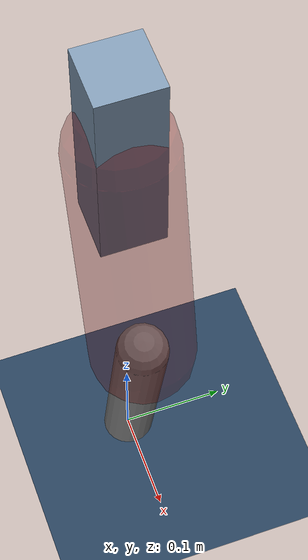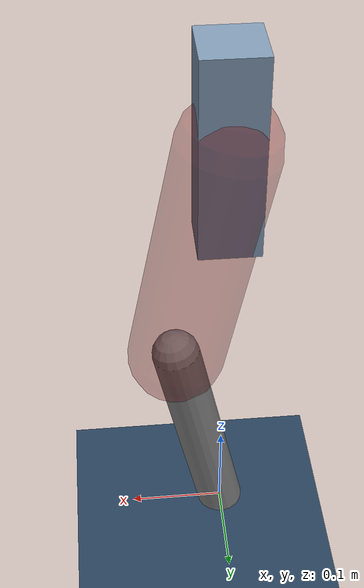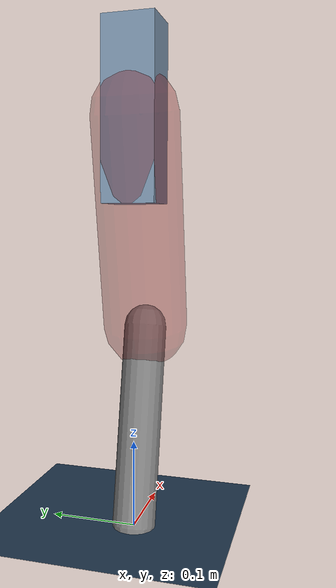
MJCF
<mujoco model="Hopper2D">
	<compiler inertiafromgeom="true" angle="radian" />
	<option timestep="0.001" integrator="implicit" cone="elliptic" solver="Newton" tolerance="1e-10" />

	<default>
		<geom contype="1" conaffinity="1" condim="3" friction="2 0.005 0.0001" solref="0.005 1" />
		<joint limited="true" damping="0.1" />
	</default>

	<asset>
		<texture name="skybox" type="skybox" builtin="gradient" rgb1=".4 .6 .8" rgb2="0 0 0" width="800" height="800" />
		<texture name="grid" type="2d" builtin="checker" rgb1=".1 .2 .3" rgb2=".2 .3 .4" width="300" height="300" mark="edge" markrgb=".2 .3 .4" />
		<material name="ground" texture="grid" texrepeat="1 1" texuniform="true" reflectance="0.1" />
		<material name="leg" rgba="0.5 0.6 0.7 1" />
	</asset>

	<worldbody>

		<geom name="floor" type="plane" size="5 5 0.25" material="ground" />

		<light directional="false" diffuse="0.8 0.8 0.8" specular="0.3 0.3 0.3" pos="0 0 2" dir="0 0 -1" />
		<light mode="targetbodycom" target="base" directional="false" diffuse="0.8 0.8 0.8" specular="0.3 0.3 0.3" pos="0 0 2" dir="0 0 -1" />

		<camera name="fixed" pos="0 -2 1" xyaxes="1 0 0 0 0 1" />
		<camera name="tracking" mode="trackcom" pos="0 -3 1" />

		<body name="root" pos="0 0 0.47317594386461387">
			<joint name="slide_x" type="slide" axis="1 0 0" range="-100 100" />
			<joint name="slide_z" type="slide" axis="0 0 1" range="0 10" />

			<body name="base" pos="0 0 0">
				<geom name="torso" type="box" size="0.03 0.03 0.1" mass="2.989" material="leg" />

				<body name="link1" pos="0 0 0" euler="0 1.3730002320601578 0">
					<joint type="hinge" axis="0 -1 0" pos="0 0 0" name="hinge1" limited="true" range="-3.14 3.14" stiffness="0" damping="0.1" />
					<geom name="thigh" type="capsule" fromto="0 0 0 0.24871365113020555 0 0" size="0.05" rgba="0.5 0 0 0.3" mass="0.8530554929385344" />

					<body name="link2" pos="0.24871365113020555 0 0" euler="0 0.40778935285518725 0">
						<joint type="hinge" axis="0 -1 0" pos="0 0 0" name="hinge2" limited="true" range="-3.14 3.14" stiffness="0" damping="0.1" />
						<geom name="shank" type="capsule" fromto="0 0 0 0.23446229273440833 0 0" size="0.025" mass="0.4296698341875267" />

					</body>
				</body>
			</body>
		</body>
	</worldbody>

	<actuator>
		<motor name="torque1" joint="hinge1" ctrlrange="-46.42010658468703 46.42010658468703" ctrllimited="true" gear="1" />
		<motor name="torque2" joint="hinge2" ctrlrange="-130.70723294210566 130.70723294210566" ctrllimited="true" gear="1" />
	</actuator>
</mujoco>
